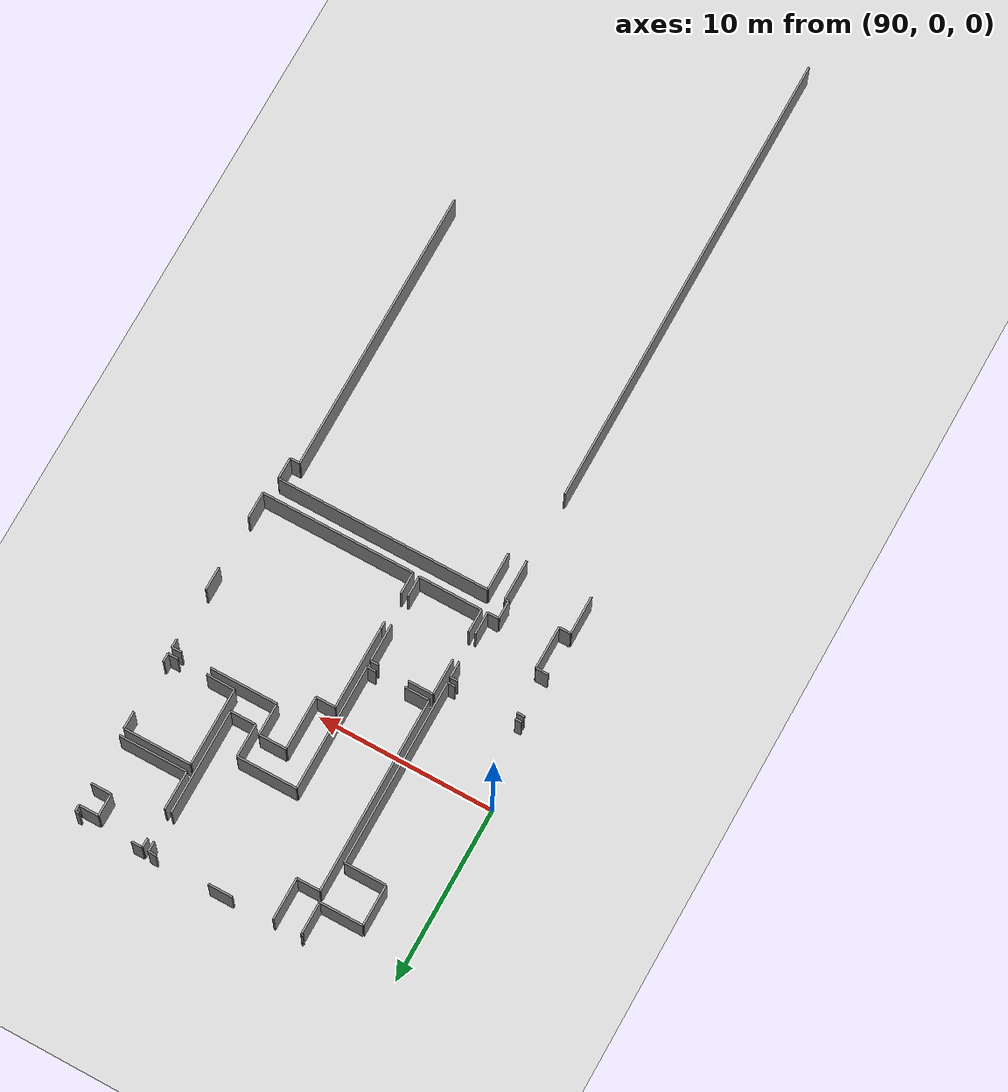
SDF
<sdf version="1.6">
 <world name="default">
  <model name="ground_plane">
   <static>1</static>
   <link name="link">
    <collision name="collision">
     <geometry><plane><normal>0 0 1</normal><size>100 100</size></plane></geometry>
     <surface><friction><ode><mu>100</mu><mu2>50</mu2></ode></friction></surface>
    </collision>
    <visual name="visual">
     <cast_shadows>0</cast_shadows>
     <geometry><plane><normal>0 0 1</normal><size>100 100</size></plane></geometry>
     <material>
      <script><uri>file://media/materials/scripts/gazebo.material</uri><name>Gazebo/Grey</name></script>
     </material>
    </visual>
   </link>
  </model>
  <model name="0510035519_A_40_1_102">
   <static>1</static>
   <link name="Wall_1092">
    <collision name="Wall_1092_Collision">
     <geometry><box><size>2.18807980684 0.1 2.5</size></box></geometry>
     <pose>1.09403990342 0 1.25 0 0 0</pose>
    </collision>
    <visual name="Wall_1092_Visual">
     <pose>1.09403990342 0 1.25 0 0 0</pose>
     <geometry><box><size>2.18807980684 0.1 2.5</size></box></geometry>
     <material>
      <script><uri>file://media/materials/scripts/gazebo.material</uri><name>Gazebo/Grey</name></script>
      <ambient>1 1 1 1</ambient>
     </material>
    </visual>
    <pose>212.067861228 -80.3065192528 0 0 0 1.57079632679</pose>
   </link>
   <link name="Wall_1093">
    <collision name="Wall_1093_Collision">
     <geometry><box><size>12.1535137883 0.1 2.5</size></box></geometry>
     <pose>6.07675689414 0 1.25 0 0 0</pose>
    </collision>
    <visual name="Wall_1093_Visual">
     <pose>6.07675689414 0 1.25 0 0 0</pose>
     <geometry><box><size>12.1535137883 0.1 2.5</size></box></geometry>
     <material>
      <script><uri>file://media/materials/scripts/gazebo.material</uri><name>Gazebo/Grey</name></script>
      <ambient>1 1 1 1</ambient>
     </material>
    </visual>
    <pose>212.067861228 -78.1184394459 0 0 0 0.0</pose>
   </link>
   <link name="Wall_1094">
    <collision name="Wall_1094_Collision">
     <geometry><box><size>1.22887279197 0.1 2.5</size></box></geometry>
     <pose>0.614436395984 0 1.25 0 0 0</pose>
    </collision>
    <visual name="Wall_1094_Visual">
     <pose>0.614436395984 0 1.25 0 0 0</pose>
     <geometry><box><size>1.22887279197 0.1 2.5</size></box></geometry>
     <material>
      <script><uri>file://media/materials/scripts/gazebo.material</uri><name>Gazebo/Grey</name></script>
      <ambient>1 1 1 1</ambient>
     </material>
    </visual>
    <pose>224.221375016 -78.1184394459 0 0 0 -1.57079632679</pose>
   </link>
   <link name="Wall_1095">
    <collision name="Wall_1095_Collision">
     <geometry><box><size>0.548989706443 0.1 2.5</size></box></geometry>
     <pose>0.274494853222 0 1.25 0 0 0</pose>
    </collision>
    <visual name="Wall_1095_Visual">
     <pose>0.274494853222 0 1.25 0 0 0</pose>
     <geometry><box><size>0.548989706443 0.1 2.5</size></box></geometry>
     <material>
      <script><uri>file://media/materials/scripts/gazebo.material</uri><name>Gazebo/Grey</name></script>
      <ambient>1 1 1 1</ambient>
     </material>
    </visual>
    <pose>224.221375016 -79.3473122379 0 0 0 3.14159265359</pose>
   </link>
   <link name="Wall_1096">
    <collision name="Wall_1096_Collision">
     <geometry><box><size>16.2846613293 0.1 2.5</size></box></geometry>
     <pose>8.14233066463 0 1.25 0 0 0</pose>
    </collision>
    <visual name="Wall_1096_Visual">
     <pose>8.14233066463 0 1.25 0 0 0</pose>
     <geometry><box><size>16.2846613293 0.1 2.5</size></box></geometry>
     <material>
      <script><uri>file://media/materials/scripts/gazebo.material</uri><name>Gazebo/Grey</name></script>
      <ambient>1 1 1 1</ambient>
     </material>
    </visual>
    <pose>223.672385309 -79.3473122379 0 0 0 -1.57079632679</pose>
   </link>
   <link name="Wall_1105">
    <collision name="Wall_1105_Collision">
     <geometry><box><size>0.10115643665 0.1 2.5</size></box></geometry>
     <pose>0.0505782183251 0 1.25 0 0 0</pose>
    </collision>
    <visual name="Wall_1105_Visual">
     <pose>0.0505782183251 0 1.25 0 0 0</pose>
     <geometry><box><size>0.10115643665 0.1 2.5</size></box></geometry>
     <material>
      <script><uri>file://media/materials/scripts/gazebo.material</uri><name>Gazebo/Grey</name></script>
      <ambient>1 1 1 1</ambient>
     </material>
    </visual>
    <pose>211.486338798 -58.0945482272 0 0 0 0.0</pose>
   </link>
   <link name="Wall_1106">
    <collision name="Wall_1106_Collision">
     <geometry><box><size>1.86402338289 0.1 2.5</size></box></geometry>
     <pose>0.932011691447 0 1.25 0 0 0</pose>
    </collision>
    <visual name="Wall_1106_Visual">
     <pose>0.932011691447 0 1.25 0 0 0</pose>
     <geometry><box><size>1.86402338289 0.1 2.5</size></box></geometry>
     <material>
      <script><uri>file://media/materials/scripts/gazebo.material</uri><name>Gazebo/Grey</name></script>
      <ambient>1 1 1 1</ambient>
     </material>
    </visual>
    <pose>211.587495234 -58.0945482272 0 0 0 -1.57079632679</pose>
   </link>
   <link name="Wall_1107">
    <collision name="Wall_1107_Collision">
     <geometry><box><size>2.46359130766 0.1 2.5</size></box></geometry>
     <pose>1.23179565383 0 1.25 0 0 0</pose>
    </collision>
    <visual name="Wall_1107_Visual">
     <pose>1.23179565383 0 1.25 0 0 0</pose>
     <geometry><box><size>2.46359130766 0.1 2.5</size></box></geometry>
     <material>
      <script><uri>file://media/materials/scripts/gazebo.material</uri><name>Gazebo/Grey</name></script>
      <ambient>1 1 1 1</ambient>
     </material>
    </visual>
    <pose>211.587495234 -59.9585716101 0 0 0 3.14159265359</pose>
   </link>
   <link name="Wall_1108">
    <collision name="Wall_1108_Collision">
     <geometry><box><size>2.34464353793 0.1 2.5</size></box></geometry>
     <pose>1.17232176897 0 1.25 0 0 0</pose>
    </collision>
    <visual name="Wall_1108_Visual">
     <pose>1.17232176897 0 1.25 0 0 0</pose>
     <geometry><box><size>2.34464353793 0.1 2.5</size></box></geometry>
     <material>
      <script><uri>file://media/materials/scripts/gazebo.material</uri><name>Gazebo/Grey</name></script>
      <ambient>1 1 1 1</ambient>
     </material>
    </visual>
    <pose>209.123903927 -59.9585716101 0 0 0 -1.57079632679</pose>
   </link>
   <link name="Wall_1109">
    <collision name="Wall_1109_Collision">
     <geometry><box><size>2.37488880417 0.1 2.5</size></box></geometry>
     <pose>1.18744440208 0 1.25 0 0 0</pose>
    </collision>
    <visual name="Wall_1109_Visual">
     <pose>1.18744440208 0 1.25 0 0 0</pose>
     <geometry><box><size>2.37488880417 0.1 2.5</size></box></geometry>
     <material>
      <script><uri>file://media/materials/scripts/gazebo.material</uri><name>Gazebo/Grey</name></script>
      <ambient>1 1 1 1</ambient>
     </material>
    </visual>
    <pose>209.123903927 -62.303215148 0 0 0 0.0</pose>
   </link>
   <link name="Wall_1110">
    <collision name="Wall_1110_Collision">
     <geometry><box><size>10.5949930105 0.1 2.5</size></box></geometry>
     <pose>5.29749650527 0 1.25 0 0 0</pose>
    </collision>
    <visual name="Wall_1110_Visual">
     <pose>5.29749650527 0 1.25 0 0 0</pose>
     <geometry><box><size>10.5949930105 0.1 2.5</size></box></geometry>
     <material>
      <script><uri>file://media/materials/scripts/gazebo.material</uri><name>Gazebo/Grey</name></script>
      <ambient>1 1 1 1</ambient>
     </material>
    </visual>
    <pose>211.498792731 -62.303215148 0 0 0 -1.57079632679</pose>
   </link>
   <link name="Wall_1111">
    <collision name="Wall_1111_Collision">
     <geometry><box><size>0.438683441352 0.1 2.5</size></box></geometry>
     <pose>0.219341720676 0 1.25 0 0 0</pose>
    </collision>
    <visual name="Wall_1111_Visual">
     <pose>0.219341720676 0 1.25 0 0 0</pose>
     <geometry><box><size>0.438683441352 0.1 2.5</size></box></geometry>
     <material>
      <script><uri>file://media/materials/scripts/gazebo.material</uri><name>Gazebo/Grey</name></script>
      <ambient>1 1 1 1</ambient>
     </material>
    </visual>
    <pose>211.498792731 -72.8982081586 0 0 0 3.14159265359</pose>
   </link>
   <link name="Wall_1112">
    <collision name="Wall_1112_Collision">
     <geometry><box><size>0.374380480366 0.1 2.5</size></box></geometry>
     <pose>0.187190240183 0 1.25 0 0 0</pose>
    </collision>
    <visual name="Wall_1112_Visual">
     <pose>0.187190240183 0 1.25 0 0 0</pose>
     <geometry><box><size>0.374380480366 0.1 2.5</size></box></geometry>
     <material>
      <script><uri>file://media/materials/scripts/gazebo.material</uri><name>Gazebo/Grey</name></script>
      <ambient>1 1 1 1</ambient>
     </material>
    </visual>
    <pose>207.60960732 -72.8982081586 0 0 0 3.14159265359</pose>
   </link>
   <link name="Wall_1115">
    <collision name="Wall_1115_Collision">
     <geometry><box><size>1.30766298132 0.1 2.5</size></box></geometry>
     <pose>0.65383149066 0 1.25 0 0 0</pose>
    </collision>
    <visual name="Wall_1115_Visual">
     <pose>0.65383149066 0 1.25 0 0 0</pose>
     <geometry><box><size>1.30766298132 0.1 2.5</size></box></geometry>
     <material>
      <script><uri>file://media/materials/scripts/gazebo.material</uri><name>Gazebo/Grey</name></script>
      <ambient>1 1 1 1</ambient>
     </material>
    </visual>
    <pose>211.835303088 -77.0372347185 0 0 0 1.57079632679</pose>
   </link>
   <link name="Wall_1116">
    <collision name="Wall_1116_Collision">
     <geometry><box><size>2.06887787521 0.1 2.5</size></box></geometry>
     <pose>1.0344389376 0 1.25 0 0 0</pose>
    </collision>
    <visual name="Wall_1116_Visual">
     <pose>1.0344389376 0 1.25 0 0 0</pose>
     <geometry><box><size>2.06887787521 0.1 2.5</size></box></geometry>
     <material>
      <script><uri>file://media/materials/scripts/gazebo.material</uri><name>Gazebo/Grey</name></script>
      <ambient>1 1 1 1</ambient>
     </material>
    </visual>
    <pose>211.835303088 -74.0795526751 0 0 0 1.57079632679</pose>
   </link>
   <link name="Wall_1117">
    <collision name="Wall_1117_Collision">
     <geometry><box><size>1.42635658915 0.1 2.5</size></box></geometry>
     <pose>0.713178294574 0 1.25 0 0 0</pose>
    </collision>
    <visual name="Wall_1117_Visual">
     <pose>0.713178294574 0 1.25 0 0 0</pose>
     <geometry><box><size>1.42635658915 0.1 2.5</size></box></geometry>
     <material>
      <script><uri>file://media/materials/scripts/gazebo.material</uri><name>Gazebo/Grey</name></script>
      <ambient>1 1 1 1</ambient>
     </material>
    </visual>
    <pose>211.835303088 -72.0106747998 0 0 0 0.0</pose>
   </link>
   <link name="Wall_1118">
    <collision name="Wall_1118_Collision">
     <geometry><box><size>0.455203964926 0.1 2.5</size></box></geometry>
     <pose>0.227601982463 0 1.25 0 0 0</pose>
    </collision>
    <visual name="Wall_1118_Visual">
     <pose>0.227601982463 0 1.25 0 0 0</pose>
     <geometry><box><size>0.455203964926 0.1 2.5</size></box></geometry>
     <material>
      <script><uri>file://media/materials/scripts/gazebo.material</uri><name>Gazebo/Grey</name></script>
      <ambient>1 1 1 1</ambient>
     </material>
    </visual>
    <pose>214.9759817 -72.0106747998 0 0 0 0.0</pose>
   </link>
   <link name="Wall_1119">
    <collision name="Wall_1119_Collision">
     <geometry><box><size>2.14487228364 0.1 2.5</size></box></geometry>
     <pose>1.07243614182 0 1.25 0 0 0</pose>
    </collision>
    <visual name="Wall_1119_Visual">
     <pose>1.07243614182 0 1.25 0 0 0</pose>
     <geometry><box><size>2.14487228364 0.1 2.5</size></box></geometry>
     <material>
      <script><uri>file://media/materials/scripts/gazebo.material</uri><name>Gazebo/Grey</name></script>
      <ambient>1 1 1 1</ambient>
     </material>
    </visual>
    <pose>215.431185665 -72.0106747998 0 0 0 -1.57079632679</pose>
   </link>
   <link name="Wall_1120">
    <collision name="Wall_1120_Collision">
     <geometry><box><size>1.18388613547 0.1 2.5</size></box></geometry>
     <pose>0.591943067734 0 1.25 0 0 0</pose>
    </collision>
    <visual name="Wall_1120_Visual">
     <pose>0.591943067734 0 1.25 0 0 0</pose>
     <geometry><box><size>1.18388613547 0.1 2.5</size></box></geometry>
     <material>
      <script><uri>file://media/materials/scripts/gazebo.material</uri><name>Gazebo/Grey</name></script>
      <ambient>1 1 1 1</ambient>
     </material>
    </visual>
    <pose>215.431185665 -75.8658025162 0 0 0 -1.57079632679</pose>
   </link>
   <link name="Wall_1121">
    <collision name="Wall_1121_Collision">
     <geometry><box><size>3.59590414353 0.1 2.5</size></box></geometry>
     <pose>1.79795207177 0 1.25 0 0 0</pose>
    </collision>
    <visual name="Wall_1121_Visual">
     <pose>1.79795207177 0 1.25 0 0 0</pose>
     <geometry><box><size>3.59590414353 0.1 2.5</size></box></geometry>
     <material>
      <script><uri>file://media/materials/scripts/gazebo.material</uri><name>Gazebo/Grey</name></script>
      <ambient>1 1 1 1</ambient>
     </material>
    </visual>
    <pose>215.431185665 -77.0496886517 0 0 0 3.13812928039</pose>
   </link>
   <link name="Wall_1122">
    <collision name="Wall_1122_Collision">
     <geometry><box><size>4.69233701868 0.1 2.5</size></box></geometry>
     <pose>2.34616850934 0 1.25 0 0 0</pose>
    </collision>
    <visual name="Wall_1122_Visual">
     <pose>2.34616850934 0 1.25 0 0 0</pose>
     <geometry><box><size>4.69233701868 0.1 2.5</size></box></geometry>
     <material>
      <script><uri>file://media/materials/scripts/gazebo.material</uri><name>Gazebo/Grey</name></script>
      <ambient>1 1 1 1</ambient>
     </material>
    </visual>
    <pose>215.799720422 -73.73262168 0 0 0 1.57079632679</pose>
   </link>
   <link name="Wall_1123">
    <collision name="Wall_1123_Collision">
     <geometry><box><size>1.10535010802 0.1 2.5</size></box></geometry>
     <pose>0.552675054009 0 1.25 0 0 0</pose>
    </collision>
    <visual name="Wall_1123_Visual">
     <pose>0.552675054009 0 1.25 0 0 0</pose>
     <geometry><box><size>1.10535010802 0.1 2.5</size></box></geometry>
     <material>
      <script><uri>file://media/materials/scripts/gazebo.material</uri><name>Gazebo/Grey</name></script>
      <ambient>1 1 1 1</ambient>
     </material>
    </visual>
    <pose>215.799720422 -69.0402846613 0 0 0 0.0</pose>
   </link>
   <link name="Wall_1124">
    <collision name="Wall_1124_Collision">
     <geometry><box><size>3.07281738467 0.1 2.5</size></box></geometry>
     <pose>1.53640869234 0 1.25 0 0 0</pose>
    </collision>
    <visual name="Wall_1124_Visual">
     <pose>1.53640869234 0 1.25 0 0 0</pose>
     <geometry><box><size>3.07281738467 0.1 2.5</size></box></geometry>
     <material>
      <script><uri>file://media/materials/scripts/gazebo.material</uri><name>Gazebo/Grey</name></script>
      <ambient>1 1 1 1</ambient>
     </material>
    </visual>
    <pose>216.90507053 -69.0402846613 0 0 0 1.57079632679</pose>
   </link>
   <link name="Wall_1125">
    <collision name="Wall_1125_Collision">
     <geometry><box><size>1.55216673021 0.1 2.5</size></box></geometry>
     <pose>0.776083365104 0 1.25 0 0 0</pose>
    </collision>
    <visual name="Wall_1125_Visual">
     <pose>0.776083365104 0 1.25 0 0 0</pose>
     <geometry><box><size>1.55216673021 0.1 2.5</size></box></geometry>
     <material>
      <script><uri>file://media/materials/scripts/gazebo.material</uri><name>Gazebo/Grey</name></script>
      <ambient>1 1 1 1</ambient>
     </material>
    </visual>
    <pose>216.90507053 -65.9674672767 0 0 0 0.0</pose>
   </link>
   <link name="Wall_1126">
    <collision name="Wall_1126_Collision">
     <geometry><box><size>1.81573262168 0.1 2.5</size></box></geometry>
     <pose>0.90786631084 0 1.25 0 0 0</pose>
    </collision>
    <visual name="Wall_1126_Visual">
     <pose>0.90786631084 0 1.25 0 0 0</pose>
     <geometry><box><size>1.81573262168 0.1 2.5</size></box></geometry>
     <material>
      <script><uri>file://media/materials/scripts/gazebo.material</uri><name>Gazebo/Grey</name></script>
      <ambient>1 1 1 1</ambient>
     </material>
    </visual>
    <pose>218.45723726 -65.9674672767 0 0 0 -1.57079632679</pose>
   </link>
   <link name="Wall_1127">
    <collision name="Wall_1127_Collision">
     <geometry><box><size>3.84521540221 0.1 2.5</size></box></geometry>
     <pose>1.92260770111 0 1.25 0 0 0</pose>
    </collision>
    <visual name="Wall_1127_Visual">
     <pose>1.92260770111 0 1.25 0 0 0</pose>
     <geometry><box><size>3.84521540221 0.1 2.5</size></box></geometry>
     <material>
      <script><uri>file://media/materials/scripts/gazebo.material</uri><name>Gazebo/Grey</name></script>
      <ambient>1 1 1 1</ambient>
     </material>
    </visual>
    <pose>218.45723726 -67.7831998983 0 0 0 0.0</pose>
   </link>
   <link name="Wall_1128">
    <collision name="Wall_1128_Collision">
     <geometry><box><size>0.548989706443 0.1 2.5</size></box></geometry>
     <pose>0.274494853221 0 1.25 0 0 0</pose>
    </collision>
    <visual name="Wall_1128_Visual">
     <pose>0.274494853221 0 1.25 0 0 0</pose>
     <geometry><box><size>0.548989706443 0.1 2.5</size></box></geometry>
     <material>
      <script><uri>file://media/materials/scripts/gazebo.material</uri><name>Gazebo/Grey</name></script>
      <ambient>1 1 1 1</ambient>
     </material>
    </visual>
    <pose>223.982462829 -67.7831998983 0 0 0 0.0</pose>
   </link>
   <link name="Wall_1129">
    <collision name="Wall_1129_Collision">
     <geometry><box><size>0.481128478841 0.1 2.5</size></box></geometry>
     <pose>0.240564239421 0 1.25 0 0 0</pose>
    </collision>
    <visual name="Wall_1129_Visual">
     <pose>0.240564239421 0 1.25 0 0 0</pose>
     <geometry><box><size>0.481128478841 0.1 2.5</size></box></geometry>
     <material>
      <script><uri>file://media/materials/scripts/gazebo.material</uri><name>Gazebo/Grey</name></script>
      <ambient>1 1 1 1</ambient>
     </material>
    </visual>
    <pose>224.531452535 -67.7831998983 0 0 0 -1.57079632679</pose>
   </link>
   <link name="Wall_1130">
    <collision name="Wall_1130_Collision">
     <geometry><box><size>1.34197483797 0.1 2.5</size></box></geometry>
     <pose>0.670987418986 0 1.25 0 0 0</pose>
    </collision>
    <visual name="Wall_1130_Visual">
     <pose>0.670987418986 0 1.25 0 0 0</pose>
     <geometry><box><size>1.34197483797 0.1 2.5</size></box></geometry>
     <material>
      <script><uri>file://media/materials/scripts/gazebo.material</uri><name>Gazebo/Grey</name></script>
      <ambient>1 1 1 1</ambient>
     </material>
    </visual>
    <pose>224.531452535 -71.2283644682 0 0 0 -1.57079632679</pose>
   </link>
   <link name="Wall_1131">
    <collision name="Wall_1131_Collision">
     <geometry><box><size>1.49523446435 0.1 2.5</size></box></geometry>
     <pose>0.747617232177 0 1.25 0 0 0</pose>
    </collision>
    <visual name="Wall_1131_Visual">
     <pose>0.747617232177 0 1.25 0 0 0</pose>
     <geometry><box><size>1.49523446435 0.1 2.5</size></box></geometry>
     <material>
      <script><uri>file://media/materials/scripts/gazebo.material</uri><name>Gazebo/Grey</name></script>
      <ambient>1 1 1 1</ambient>
     </material>
    </visual>
    <pose>224.531452535 -75.5796162155 0 0 0 -1.57079632679</pose>
   </link>
   <link name="Wall_1132">
    <collision name="Wall_1132_Collision">
     <geometry><box><size>8.7192781802 0.1 2.5</size></box></geometry>
     <pose>4.3596390901 0 1.25 0 0 0</pose>
    </collision>
    <visual name="Wall_1132_Visual">
     <pose>4.3596390901 0 1.25 0 0 0</pose>
     <geometry><box><size>8.7192781802 0.1 2.5</size></box></geometry>
     <material>
      <script><uri>file://media/materials/scripts/gazebo.material</uri><name>Gazebo/Grey</name></script>
      <ambient>1 1 1 1</ambient>
     </material>
    </visual>
    <pose>224.531452535 -77.0748506799 0 0 0 3.14159265359</pose>
   </link>
   <link name="Wall_1133">
    <collision name="Wall_1133_Collision">
     <geometry><box><size>1.25276401067 0.1 2.5</size></box></geometry>
     <pose>0.626382005337 0 1.25 0 0 0</pose>
    </collision>
    <visual name="Wall_1133_Visual">
     <pose>0.626382005337 0 1.25 0 0 0</pose>
     <geometry><box><size>1.25276401067 0.1 2.5</size></box></geometry>
     <material>
      <script><uri>file://media/materials/scripts/gazebo.material</uri><name>Gazebo/Grey</name></script>
      <ambient>1 1 1 1</ambient>
     </material>
    </visual>
    <pose>215.812174355 -77.0748506799 0 0 0 1.57079632679</pose>
   </link>
   <link name="Wall_1134">
    <collision name="Wall_1134_Collision">
     <geometry><box><size>0.391353375116 0.1 2.5</size></box></geometry>
     <pose>0.195676687558 0 1.25 0 0 0</pose>
    </collision>
    <visual name="Wall_1134_Visual">
     <pose>0.195676687558 0 1.25 0 0 0</pose>
     <geometry><box><size>0.391353375116 0.1 2.5</size></box></geometry>
     <material>
      <script><uri>file://media/materials/scripts/gazebo.material</uri><name>Gazebo/Grey</name></script>
      <ambient>1 1 1 1</ambient>
     </material>
    </visual>
    <pose>215.812174355 -74.1237768459 0 0 0 1.60262443125</pose>
   </link>
   <link name="Wall_1135">
    <collision name="Wall_1135_Collision">
     <geometry><box><size>11.1480493074 0.1 2.5</size></box></geometry>
     <pose>5.5740246537 0 1.25 0 0 0</pose>
    </collision>
    <visual name="Wall_1135_Visual">
     <pose>5.5740246537 0 1.25 0 0 0</pose>
     <geometry><box><size>11.1480493074 0.1 2.5</size></box></geometry>
     <material>
      <script><uri>file://media/materials/scripts/gazebo.material</uri><name>Gazebo/Grey</name></script>
      <ambient>1 1 1 1</ambient>
     </material>
    </visual>
    <pose>211.851823612 -71.6085906723 0 0 0 1.57079632679</pose>
   </link>
   <link name="Wall_1136">
    <collision name="Wall_1136_Collision">
     <geometry><box><size>1.3252001525 0.1 2.5</size></box></geometry>
     <pose>0.662600076249 0 1.25 0 0 0</pose>
    </collision>
    <visual name="Wall_1136_Visual">
     <pose>0.662600076249 0 1.25 0 0 0</pose>
     <geometry><box><size>1.3252001525 0.1 2.5</size></box></geometry>
     <material>
      <script><uri>file://media/materials/scripts/gazebo.material</uri><name>Gazebo/Grey</name></script>
      <ambient>1 1 1 1</ambient>
     </material>
    </visual>
    <pose>211.851823612 -60.4605413648 0 0 0 0.0</pose>
   </link>
   <link name="Wall_1137">
    <collision name="Wall_1137_Collision">
     <geometry><box><size>2.38048036599 0.1 2.5</size></box></geometry>
     <pose>1.190240183 0 1.25 0 0 0</pose>
    </collision>
    <visual name="Wall_1137_Visual">
     <pose>1.190240183 0 1.25 0 0 0</pose>
     <geometry><box><size>2.38048036599 0.1 2.5</size></box></geometry>
     <material>
      <script><uri>file://media/materials/scripts/gazebo.material</uri><name>Gazebo/Grey</name></script>
      <ambient>1 1 1 1</ambient>
     </material>
    </visual>
    <pose>213.177023764 -60.4605413648 0 0 0 1.57079632679</pose>
   </link>
   <link name="Wall_1138">
    <collision name="Wall_1138_Collision">
     <geometry><box><size>1.37908247554 0.1 2.5</size></box></geometry>
     <pose>0.689541237768 0 1.25 0 0 0</pose>
    </collision>
    <visual name="Wall_1138_Visual">
     <pose>0.689541237768 0 1.25 0 0 0</pose>
     <geometry><box><size>1.37908247554 0.1 2.5</size></box></geometry>
     <material>
      <script><uri>file://media/materials/scripts/gazebo.material</uri><name>Gazebo/Grey</name></script>
      <ambient>1 1 1 1</ambient>
     </material>
    </visual>
    <pose>215.504892617 -58.0800609989 0 0 0 0.0</pose>
   </link>
   <link name="Wall_1139">
    <collision name="Wall_1139_Collision">
     <geometry><box><size>0.434616850934 0.1 2.5</size></box></geometry>
     <pose>0.217308425467 0 1.25 0 0 0</pose>
    </collision>
    <visual name="Wall_1139_Visual">
     <pose>0.217308425467 0 1.25 0 0 0</pose>
     <geometry><box><size>0.434616850934 0.1 2.5</size></box></geometry>
     <material>
      <script><uri>file://media/materials/scripts/gazebo.material</uri><name>Gazebo/Grey</name></script>
      <ambient>1 1 1 1</ambient>
     </material>
    </visual>
    <pose>219.882831364 -58.0800609989 0 0 0 0.0</pose>
   </link>
   <link name="Wall_1140">
    <collision name="Wall_1140_Collision">
     <geometry><box><size>0.571355953743 0.1 2.5</size></box></geometry>
     <pose>0.285677976871 0 1.25 0 0 0</pose>
    </collision>
    <visual name="Wall_1140_Visual">
     <pose>0.285677976871 0 1.25 0 0 0</pose>
     <geometry><box><size>0.571355953743 0.1 2.5</size></box></geometry>
     <material>
      <script><uri>file://media/materials/scripts/gazebo.material</uri><name>Gazebo/Grey</name></script>
      <ambient>1 1 1 1</ambient>
     </material>
    </visual>
    <pose>220.317448215 -58.0800609989 0 0 0 -1.57079632679</pose>
   </link>
   <link name="Wall_1141">
    <collision name="Wall_1141_Collision">
     <geometry><box><size>5.98449612403 0.1 2.5</size></box></geometry>
     <pose>2.99224806202 0 1.25 0 0 0</pose>
    </collision>
    <visual name="Wall_1141_Visual">
     <pose>2.99224806202 0 1.25 0 0 0</pose>
     <geometry><box><size>5.98449612403 0.1 2.5</size></box></geometry>
     <material>
      <script><uri>file://media/materials/scripts/gazebo.material</uri><name>Gazebo/Grey</name></script>
      <ambient>1 1 1 1</ambient>
     </material>
    </visual>
    <pose>220.317448215 -60.3403227856 0 0 0 -1.57079632679</pose>
   </link>
   <link name="Wall_1142">
    <collision name="Wall_1142_Collision">
     <geometry><box><size>1.45634769348 0.1 2.5</size></box></geometry>
     <pose>0.72817384674 0 1.25 0 0 0</pose>
    </collision>
    <visual name="Wall_1142_Visual">
     <pose>0.72817384674 0 1.25 0 0 0</pose>
     <geometry><box><size>1.45634769348 0.1 2.5</size></box></geometry>
     <material>
      <script><uri>file://media/materials/scripts/gazebo.material</uri><name>Gazebo/Grey</name></script>
      <ambient>1 1 1 1</ambient>
     </material>
    </visual>
    <pose>220.317448215 -66.3248189096 0 0 0 3.14159265359</pose>
   </link>
   <link name="Wall_1143">
    <collision name="Wall_1143_Collision">
     <geometry><box><size>1.86808997331 0.1 2.5</size></box></geometry>
     <pose>0.934044986657 0 1.25 0 0 0</pose>
    </collision>
    <visual name="Wall_1143_Visual">
     <pose>0.934044986657 0 1.25 0 0 0</pose>
     <geometry><box><size>1.86808997331 0.1 2.5</size></box></geometry>
     <material>
      <script><uri>file://media/materials/scripts/gazebo.material</uri><name>Gazebo/Grey</name></script>
      <ambient>1 1 1 1</ambient>
     </material>
    </visual>
    <pose>218.861100521 -66.3248189096 0 0 0 1.57079632679</pose>
   </link>
   <link name="Wall_1144">
    <collision name="Wall_1144_Collision">
     <geometry><box><size>3.41771508451 0.1 2.5</size></box></geometry>
     <pose>1.70885754225 0 1.25 0 0 0</pose>
    </collision>
    <visual name="Wall_1144_Visual">
     <pose>1.70885754225 0 1.25 0 0 0</pose>
     <geometry><box><size>3.41771508451 0.1 2.5</size></box></geometry>
     <material>
      <script><uri>file://media/materials/scripts/gazebo.material</uri><name>Gazebo/Grey</name></script>
      <ambient>1 1 1 1</ambient>
     </material>
    </visual>
    <pose>218.861100521 -64.4567289363 0 0 0 3.14159265359</pose>
   </link>
   <link name="Wall_1145">
    <collision name="Wall_1145_Collision">
     <geometry><box><size>7.19939001144 0.1 2.5</size></box></geometry>
     <pose>3.59969500572 0 1.25 0 0 0</pose>
    </collision>
    <visual name="Wall_1145_Visual">
     <pose>3.59969500572 0 1.25 0 0 0</pose>
     <geometry><box><size>7.19939001144 0.1 2.5</size></box></geometry>
     <material>
      <script><uri>file://media/materials/scripts/gazebo.material</uri><name>Gazebo/Grey</name></script>
      <ambient>1 1 1 1</ambient>
     </material>
    </visual>
    <pose>215.443385437 -64.4567289363 0 0 0 -1.57079632679</pose>
   </link>
   <link name="Wall_1146">
    <collision name="Wall_1146_Collision">
     <geometry><box><size>0.503748888042 0.1 2.5</size></box></geometry>
     <pose>0.251874444021 0 1.25 0 0 0</pose>
    </collision>
    <visual name="Wall_1146_Visual">
     <pose>0.251874444021 0 1.25 0 0 0</pose>
     <geometry><box><size>0.503748888042 0.1 2.5</size></box></geometry>
     <material>
      <script><uri>file://media/materials/scripts/gazebo.material</uri><name>Gazebo/Grey</name></script>
      <ambient>1 1 1 1</ambient>
     </material>
    </visual>
    <pose>215.443385437 -71.6561189478 0 0 0 3.14159265359</pose>
   </link>
   <link name="Wall_1147">
    <collision name="Wall_1147_Collision">
     <geometry><box><size>1.41441097979 0.1 2.5</size></box></geometry>
     <pose>0.707205489897 0 1.25 0 0 0</pose>
    </collision>
    <visual name="Wall_1147_Visual">
     <pose>0.707205489897 0 1.25 0 0 0</pose>
     <geometry><box><size>1.41441097979 0.1 2.5</size></box></geometry>
     <material>
      <script><uri>file://media/materials/scripts/gazebo.material</uri><name>Gazebo/Grey</name></script>
      <ambient>1 1 1 1</ambient>
     </material>
    </visual>
    <pose>213.262676325 -71.6561189478 0 0 0 3.14159265359</pose>
   </link>
   <link name="Wall_1148">
    <collision name="Wall_1148_Collision">
     <geometry><box><size>0.0476612865375 0.1 2.5</size></box></geometry>
     <pose>0.0238306432687 0 1.25 0 0 0</pose>
    </collision>
    <visual name="Wall_1148_Visual">
     <pose>0.0238306432687 0 1.25 0 0 0</pose>
     <geometry><box><size>0.0476612865375 0.1 2.5</size></box></geometry>
     <material>
      <script><uri>file://media/materials/scripts/gazebo.material</uri><name>Gazebo/Grey</name></script>
      <ambient>1 1 1 1</ambient>
     </material>
    </visual>
    <pose>211.848265345 -71.6561189478 0 0 0 1.49606942245</pose>
   </link>
   <link name="Wall_1149">
    <collision name="Wall_1149_Collision">
     <geometry><box><size>2.20917524463 0.1 2.5</size></box></geometry>
     <pose>1.10458762232 0 1.25 0 0 0</pose>
    </collision>
    <visual name="Wall_1149_Visual">
     <pose>1.10458762232 0 1.25 0 0 0</pose>
     <geometry><box><size>2.20917524463 0.1 2.5</size></box></geometry>
     <material>
      <script><uri>file://media/materials/scripts/gazebo.material</uri><name>Gazebo/Grey</name></script>
      <ambient>1 1 1 1</ambient>
     </material>
    </visual>
    <pose>220.675816495 -62.5464480874 0 0 0 1.57079632679</pose>
   </link>
   <link name="Wall_1150">
    <collision name="Wall_1150_Collision">
     <geometry><box><size>0.520777735417 0.1 2.5</size></box></geometry>
     <pose>0.260388867709 0 1.25 0 0 0</pose>
    </collision>
    <visual name="Wall_1150_Visual">
     <pose>0.260388867709 0 1.25 0 0 0</pose>
     <geometry><box><size>0.520777735417 0.1 2.5</size></box></geometry>
     <material>
      <script><uri>file://media/materials/scripts/gazebo.material</uri><name>Gazebo/Grey</name></script>
      <ambient>1 1 1 1</ambient>
     </material>
    </visual>
    <pose>220.675816495 -58.6226966578 0 0 0 1.57079632679</pose>
   </link>
   <link name="Wall_1151">
    <collision name="Wall_1151_Collision">
     <geometry><box><size>0.62015503876 0.1 2.5</size></box></geometry>
     <pose>0.31007751938 0 1.25 0 0 0</pose>
    </collision>
    <visual name="Wall_1151_Visual">
     <pose>0.31007751938 0 1.25 0 0 0</pose>
     <geometry><box><size>0.62015503876 0.1 2.5</size></box></geometry>
     <material>
      <script><uri>file://media/materials/scripts/gazebo.material</uri><name>Gazebo/Grey</name></script>
      <ambient>1 1 1 1</ambient>
     </material>
    </visual>
    <pose>220.675816495 -58.1019189224 0 0 0 0.0</pose>
   </link>
   <link name="Wall_1152">
    <collision name="Wall_1152_Collision">
     <geometry><box><size>0.223662472995 0.1 2.5</size></box></geometry>
     <pose>0.111831236498 0 1.25 0 0 0</pose>
    </collision>
    <visual name="Wall_1152_Visual">
     <pose>0.111831236498 0 1.25 0 0 0</pose>
     <geometry><box><size>0.223662472995 0.1 2.5</size></box></geometry>
     <material>
      <script><uri>file://media/materials/scripts/gazebo.material</uri><name>Gazebo/Grey</name></script>
      <ambient>1 1 1 1</ambient>
     </material>
    </visual>
    <pose>224.307790062 -58.1019189224 0 0 0 0.0</pose>
   </link>
   <link name="Wall_1153">
    <collision name="Wall_1153_Collision">
     <geometry><box><size>0.350743423561 0.1 2.5</size></box></geometry>
     <pose>0.17537171178 0 1.25 0 0 0</pose>
    </collision>
    <visual name="Wall_1153_Visual">
     <pose>0.17537171178 0 1.25 0 0 0</pose>
     <geometry><box><size>0.350743423561 0.1 2.5</size></box></geometry>
     <material>
      <script><uri>file://media/materials/scripts/gazebo.material</uri><name>Gazebo/Grey</name></script>
      <ambient>1 1 1 1</ambient>
     </material>
    </visual>
    <pose>224.531452535 -58.1019189224 0 0 0 -1.57079632679</pose>
   </link>
   <link name="Wall_1154">
    <collision name="Wall_1154_Collision">
     <geometry><box><size>1.123395603 0.1 2.5</size></box></geometry>
     <pose>0.5616978015 0 1.25 0 0 0</pose>
    </collision>
    <visual name="Wall_1154_Visual">
     <pose>0.5616978015 0 1.25 0 0 0</pose>
     <geometry><box><size>1.123395603 0.1 2.5</size></box></geometry>
     <material>
      <script><uri>file://media/materials/scripts/gazebo.material</uri><name>Gazebo/Grey</name></script>
      <ambient>1 1 1 1</ambient>
     </material>
    </visual>
    <pose>224.531452535 -58.4526623459 0 0 0 3.14159265359</pose>
   </link>
   <link name="Wall_1155">
    <collision name="Wall_1155_Collision">
     <geometry><box><size>1.26242216292 0.1 2.5</size></box></geometry>
     <pose>0.631211081459 0 1.25 0 0 0</pose>
    </collision>
    <visual name="Wall_1155_Visual">
     <pose>0.631211081459 0 1.25 0 0 0</pose>
     <geometry><box><size>1.26242216292 0.1 2.5</size></box></geometry>
     <material>
      <script><uri>file://media/materials/scripts/gazebo.material</uri><name>Gazebo/Grey</name></script>
      <ambient>1 1 1 1</ambient>
     </material>
    </visual>
    <pose>223.408056932 -58.4526623459 0 0 0 -1.57079632679</pose>
   </link>
   <link name="Wall_1156">
    <collision name="Wall_1156_Collision">
     <geometry><box><size>1.15643665015 0.1 2.5</size></box></geometry>
     <pose>0.578218325073 0 1.25 0 0 0</pose>
    </collision>
    <visual name="Wall_1156_Visual">
     <pose>0.578218325073 0 1.25 0 0 0</pose>
     <geometry><box><size>1.15643665015 0.1 2.5</size></box></geometry>
     <material>
      <script><uri>file://media/materials/scripts/gazebo.material</uri><name>Gazebo/Grey</name></script>
      <ambient>1 1 1 1</ambient>
     </material>
    </visual>
    <pose>223.408056932 -59.7150845088 0 0 0 0.0</pose>
   </link>
   <link name="Wall_1157">
    <collision name="Wall_1157_Collision">
     <geometry><box><size>3.88868559258 0.1 2.5</size></box></geometry>
     <pose>1.94434279629 0 1.25 0 0 0</pose>
    </collision>
    <visual name="Wall_1157_Visual">
     <pose>1.94434279629 0 1.25 0 0 0</pose>
     <geometry><box><size>3.88868559258 0.1 2.5</size></box></geometry>
     <material>
      <script><uri>file://media/materials/scripts/gazebo.material</uri><name>Gazebo/Grey</name></script>
      <ambient>1 1 1 1</ambient>
     </material>
    </visual>
    <pose>224.564493582 -62.5383149066 0 0 0 -3.13950115337</pose>
   </link>
   <link name="Wall_1158">
    <collision name="Wall_1158_Collision">
     <geometry><box><size>4.42394205109 0.1 2.5</size></box></geometry>
     <pose>2.21197102554 0 1.25 0 0 0</pose>
    </collision>
    <visual name="Wall_1158_Visual">
     <pose>2.21197102554 0 1.25 0 0 0</pose>
     <geometry><box><size>4.42394205109 0.1 2.5</size></box></geometry>
     <material>
      <script><uri>file://media/materials/scripts/gazebo.material</uri><name>Gazebo/Grey</name></script>
      <ambient>1 1 1 1</ambient>
     </material>
    </visual>
    <pose>220.683441352 -67.3836573898 0 0 0 1.57079632679</pose>
   </link>
   <link name="Wall_1159">
    <collision name="Wall_1159_Collision">
     <geometry><box><size>3.85563604016 0.1 2.5</size></box></geometry>
     <pose>1.92781802008 0 1.25 0 0 0</pose>
    </collision>
    <visual name="Wall_1159_Visual">
     <pose>1.92781802008 0 1.25 0 0 0</pose>
     <geometry><box><size>3.85563604016 0.1 2.5</size></box></geometry>
     <material>
      <script><uri>file://media/materials/scripts/gazebo.material</uri><name>Gazebo/Grey</name></script>
      <ambient>1 1 1 1</ambient>
     </material>
    </visual>
    <pose>220.683441352 -62.9597153387 0 0 0 0.0</pose>
   </link>
   <link name="Wall_1160">
    <collision name="Wall_1160_Collision">
     <geometry><box><size>0.978777481256 0.1 2.5</size></box></geometry>
     <pose>0.489388740628 0 1.25 0 0 0</pose>
    </collision>
    <visual name="Wall_1160_Visual">
     <pose>0.489388740628 0 1.25 0 0 0</pose>
     <geometry><box><size>0.978777481256 0.1 2.5</size></box></geometry>
     <material>
      <script><uri>file://media/materials/scripts/gazebo.material</uri><name>Gazebo/Grey</name></script>
      <ambient>1 1 1 1</ambient>
     </material>
    </visual>
    <pose>224.539077392 -62.9597153387 0 0 0 -1.57079632679</pose>
   </link>
   <link name="Wall_1161">
    <collision name="Wall_1161_Collision">
     <geometry><box><size>0.477061888423 0.1 2.5</size></box></geometry>
     <pose>0.238530944211 0 1.25 0 0 0</pose>
    </collision>
    <visual name="Wall_1161_Visual">
     <pose>0.238530944211 0 1.25 0 0 0</pose>
     <geometry><box><size>0.477061888423 0.1 2.5</size></box></geometry>
     <material>
      <script><uri>file://media/materials/scripts/gazebo.material</uri><name>Gazebo/Grey</name></script>
      <ambient>1 1 1 1</ambient>
     </material>
    </visual>
    <pose>224.539077392 -66.9274367772 0 0 0 -1.57079632679</pose>
   </link>
   <link name="Wall_1162">
    <collision name="Wall_1162_Collision">
     <geometry><box><size>0.569322658533 0.1 2.5</size></box></geometry>
     <pose>0.284661329267 0 1.25 0 0 0</pose>
    </collision>
    <visual name="Wall_1162_Visual">
     <pose>0.284661329267 0 1.25 0 0 0</pose>
     <geometry><box><size>0.569322658533 0.1 2.5</size></box></geometry>
     <material>
      <script><uri>file://media/materials/scripts/gazebo.material</uri><name>Gazebo/Grey</name></script>
      <ambient>1 1 1 1</ambient>
     </material>
    </visual>
    <pose>224.539077392 -67.4044986657 0 0 0 3.14159265359</pose>
   </link>
   <link name="Wall_1163">
    <collision name="Wall_1163_Collision">
     <geometry><box><size>1.61914544787 0.1 2.5</size></box></geometry>
     <pose>0.809572723934 0 1.25 0 0 0</pose>
    </collision>
    <visual name="Wall_1163_Visual">
     <pose>0.809572723934 0 1.25 0 0 0</pose>
     <geometry><box><size>1.61914544787 0.1 2.5</size></box></geometry>
     <material>
      <script><uri>file://media/materials/scripts/gazebo.material</uri><name>Gazebo/Grey</name></script>
      <ambient>1 1 1 1</ambient>
     </material>
    </visual>
    <pose>222.302452662 -67.4044986657 0 0 0 3.12872052313</pose>
   </link>
   <link name="Wall_1171">
    <collision name="Wall_1171_Collision">
     <geometry><box><size>2.18401321642 0.1 2.5</size></box></geometry>
     <pose>1.09200660821 0 1.25 0 0 0</pose>
    </collision>
    <visual name="Wall_1171_Visual">
     <pose>1.09200660821 0 1.25 0 0 0</pose>
     <geometry><box><size>2.18401321642 0.1 2.5</size></box></geometry>
     <material>
      <script><uri>file://media/materials/scripts/gazebo.material</uri><name>Gazebo/Grey</name></script>
      <ambient>1 1 1 1</ambient>
     </material>
    </visual>
    <pose>207.293175753 -80.318719024 0 0 0 1.57079632679</pose>
   </link>
   <link name="Wall_1172">
    <collision name="Wall_1172_Collision">
     <geometry><box><size>0.672258228492 0.1 2.5</size></box></geometry>
     <pose>0.336129114246 0 1.25 0 0 0</pose>
    </collision>
    <visual name="Wall_1172_Visual">
     <pose>0.336129114246 0 1.25 0 0 0</pose>
     <geometry><box><size>0.672258228492 0.1 2.5</size></box></geometry>
     <material>
      <script><uri>file://media/materials/scripts/gazebo.material</uri><name>Gazebo/Grey</name></script>
      <ambient>1 1 1 1</ambient>
     </material>
    </visual>
    <pose>207.293175753 -78.1347058076 0 0 0 0.0</pose>
   </link>
   <link name="Wall_1173">
    <collision name="Wall_1173_Collision">
     <geometry><box><size>2.42190875588 0.1 2.5</size></box></geometry>
     <pose>1.21095437794 0 1.25 0 0 0</pose>
    </collision>
    <visual name="Wall_1173_Visual">
     <pose>1.21095437794 0 1.25 0 0 0</pose>
     <geometry><box><size>2.42190875588 0.1 2.5</size></box></geometry>
     <material>
      <script><uri>file://media/materials/scripts/gazebo.material</uri><name>Gazebo/Grey</name></script>
      <ambient>1 1 1 1</ambient>
     </material>
    </visual>
    <pose>207.965433981 -78.1347058076 0 0 0 1.57079632679</pose>
   </link>
   <link name="Wall_1174">
    <collision name="Wall_1174_Collision">
     <geometry><box><size>0.712924132672 0.1 2.5</size></box></geometry>
     <pose>0.356462066336 0 1.25 0 0 0</pose>
    </collision>
    <visual name="Wall_1174_Visual">
     <pose>0.356462066336 0 1.25 0 0 0</pose>
     <geometry><box><size>0.712924132672 0.1 2.5</size></box></geometry>
     <material>
      <script><uri>file://media/materials/scripts/gazebo.material</uri><name>Gazebo/Grey</name></script>
      <ambient>1 1 1 1</ambient>
     </material>
    </visual>
    <pose>207.965433981 -75.7127970517 0 0 0 3.14159265359</pose>
   </link>
   <link name="Wall_1176">
    <collision name="Wall_1176_Collision">
     <geometry><box><size>0.442495869869 0.1 2.5</size></box></geometry>
     <pose>0.221247934935 0 1.25 0 0 0</pose>
    </collision>
    <visual name="Wall_1176_Visual">
     <pose>0.221247934935 0 1.25 0 0 0</pose>
     <geometry><box><size>0.442495869869 0.1 2.5</size></box></geometry>
     <material>
      <script><uri>file://media/materials/scripts/gazebo.material</uri><name>Gazebo/Grey</name></script>
      <ambient>1 1 1 1</ambient>
     </material>
    </visual>
    <pose>207.252509849 -73.2105731351 0 0 0 0.0</pose>
   </link>
   <link name="Wall_1177">
    <collision name="Wall_1177_Collision">
     <geometry><box><size>0.420892108273 0.1 2.5</size></box></geometry>
     <pose>0.210446054136 0 1.25 0 0 0</pose>
    </collision>
    <visual name="Wall_1177_Visual">
     <pose>0.210446054136 0 1.25 0 0 0</pose>
     <geometry><box><size>0.420892108273 0.1 2.5</size></box></geometry>
     <material>
      <script><uri>file://media/materials/scripts/gazebo.material</uri><name>Gazebo/Grey</name></script>
      <ambient>1 1 1 1</ambient>
     </material>
    </visual>
    <pose>211.081458889 -73.2105731351 0 0 0 0.0</pose>
   </link>
   <link name="Wall_1178">
    <collision name="Wall_1178_Collision">
     <geometry><box><size>0.906849663235 0.1 2.5</size></box></geometry>
     <pose>0.453424831618 0 1.25 0 0 0</pose>
    </collision>
    <visual name="Wall_1178_Visual">
     <pose>0.453424831618 0 1.25 0 0 0</pose>
     <geometry><box><size>0.906849663235 0.1 2.5</size></box></geometry>
     <material>
      <script><uri>file://media/materials/scripts/gazebo.material</uri><name>Gazebo/Grey</name></script>
      <ambient>1 1 1 1</ambient>
     </material>
    </visual>
    <pose>211.502350998 -73.2105731351 0 0 0 -1.57079632679</pose>
   </link>
   <link name="Wall_1179">
    <collision name="Wall_1179_Collision">
     <geometry><box><size>1.28910916254 0.1 2.5</size></box></geometry>
     <pose>0.644554581268 0 1.25 0 0 0</pose>
    </collision>
    <visual name="Wall_1179_Visual">
     <pose>0.644554581268 0 1.25 0 0 0</pose>
     <geometry><box><size>1.28910916254 0.1 2.5</size></box></geometry>
     <material>
      <script><uri>file://media/materials/scripts/gazebo.material</uri><name>Gazebo/Grey</name></script>
      <ambient>1 1 1 1</ambient>
     </material>
    </visual>
    <pose>211.502350998 -75.7816749269 0 0 0 -1.57079632679</pose>
   </link>
   <link name="Wall_1180">
    <collision name="Wall_1180_Collision">
     <geometry><box><size>0.650400304994 0.1 2.5</size></box></geometry>
     <pose>0.325200152497 0 1.25 0 0 0</pose>
    </collision>
    <visual name="Wall_1180_Visual">
     <pose>0.325200152497 0 1.25 0 0 0</pose>
     <geometry><box><size>0.650400304994 0.1 2.5</size></box></geometry>
     <material>
      <script><uri>file://media/materials/scripts/gazebo.material</uri><name>Gazebo/Grey</name></script>
      <ambient>1 1 1 1</ambient>
     </material>
    </visual>
    <pose>211.502350998 -77.0707840895 0 0 0 3.14159265359</pose>
   </link>
   <link name="Wall_1181">
    <collision name="Wall_1181_Collision">
     <geometry><box><size>1.03011818528 0.1 2.5</size></box></geometry>
     <pose>0.515059092642 0 1.25 0 0 0</pose>
    </collision>
    <visual name="Wall_1181_Visual">
     <pose>0.515059092642 0 1.25 0 0 0</pose>
     <geometry><box><size>1.03011818528 0.1 2.5</size></box></geometry>
     <material>
      <script><uri>file://media/materials/scripts/gazebo.material</uri><name>Gazebo/Grey</name></script>
      <ambient>1 1 1 1</ambient>
     </material>
    </visual>
    <pose>210.851950693 -77.0707840895 0 0 0 -1.57079632679</pose>
   </link>
   <link name="Wall_1182">
    <collision name="Wall_1182_Collision">
     <geometry><box><size>0.215275130258 0.1 2.5</size></box></geometry>
     <pose>0.107637565129 0 1.25 0 0 0</pose>
    </collision>
    <visual name="Wall_1182_Visual">
     <pose>0.107637565129 0 1.25 0 0 0</pose>
     <geometry><box><size>0.215275130258 0.1 2.5</size></box></geometry>
     <material>
      <script><uri>file://media/materials/scripts/gazebo.material</uri><name>Gazebo/Grey</name></script>
      <ambient>1 1 1 1</ambient>
     </material>
    </visual>
    <pose>210.851950693 -78.1009022747 0 0 0 0.0</pose>
   </link>
   <link name="Wall_1183">
    <collision name="Wall_1183_Collision">
     <geometry><box><size>2.29686110052 0.1 2.5</size></box></geometry>
     <pose>1.14843055026 0 1.25 0 0 0</pose>
    </collision>
    <visual name="Wall_1183_Visual">
     <pose>1.14843055026 0 1.25 0 0 0</pose>
     <geometry><box><size>2.29686110052 0.1 2.5</size></box></geometry>
     <material>
      <script><uri>file://media/materials/scripts/gazebo.material</uri><name>Gazebo/Grey</name></script>
      <ambient>1 1 1 1</ambient>
     </material>
    </visual>
    <pose>211.067225823 -78.1009022747 0 0 0 -1.57079632679</pose>
   </link>
   <link name="Wall_1184">
    <collision name="Wall_1184_Collision">
     <geometry><box><size>26.5695768204 0.1 2.5</size></box></geometry>
     <pose>13.2847884102 0 1.25 0 0 0</pose>
    </collision>
    <visual name="Wall_1184_Visual">
     <pose>13.2847884102 0 1.25 0 0 0</pose>
     <geometry><box><size>26.5695768204 0.1 2.5</size></box></geometry>
     <material>
      <script><uri>file://media/materials/scripts/gazebo.material</uri><name>Gazebo/Grey</name></script>
      <ambient>1 1 1 1</ambient>
     </material>
    </visual>
    <pose>211.067225823 -84.4254670225 0 0 0 -1.57079632679</pose>
   </link>
   <pose>-116.6 68.721527513 0 0 0 0</pose>
  </model>
 </world>
</sdf>
